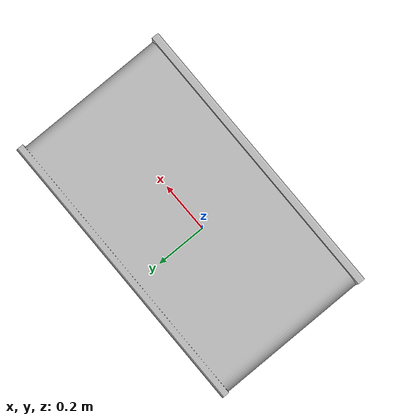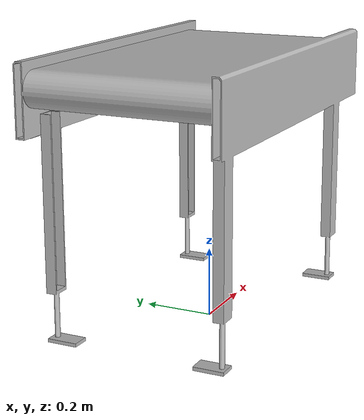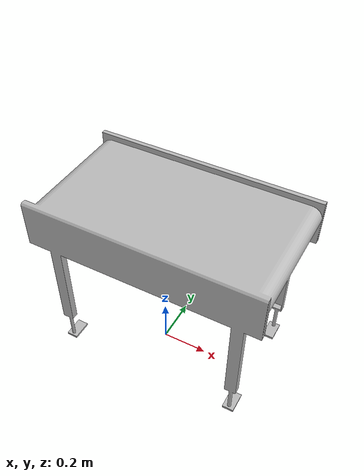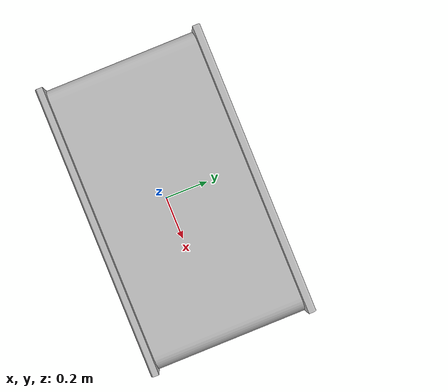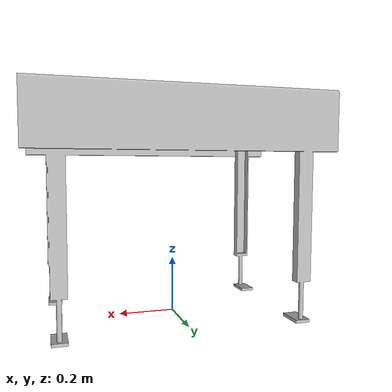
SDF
<?xml version="1.0" ?>
<sdf version="1.6">
  <model name="straight_1m">
    <static>false</static>
    <link name="link">
      <collision name="collision">
        <!-- Offset applied here to align feet to ground -->
        <pose>0 0 0.697456 0 0 0</pose>
        <geometry>
          <mesh>
            <uri>model://straight_1m/meshes/col_straight_1m.obj</uri>
            <scale>1 1 1</scale>
          </mesh>
        </geometry>
      </collision>

      <visual name="visual">
        <!-- Offset applied here to align feet to ground -->
        <pose>0 0 0.697456 0 0 0</pose>
        <geometry>
          <mesh>
            <uri>model://straight_1m/meshes/col_straight_1m.obj</uri>
            <scale>1 1 1</scale>
          </mesh>
        </geometry>
      </visual>
    </link>
  </model>
</sdf>
